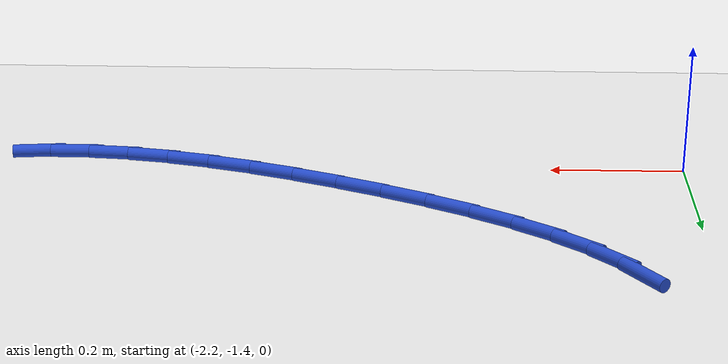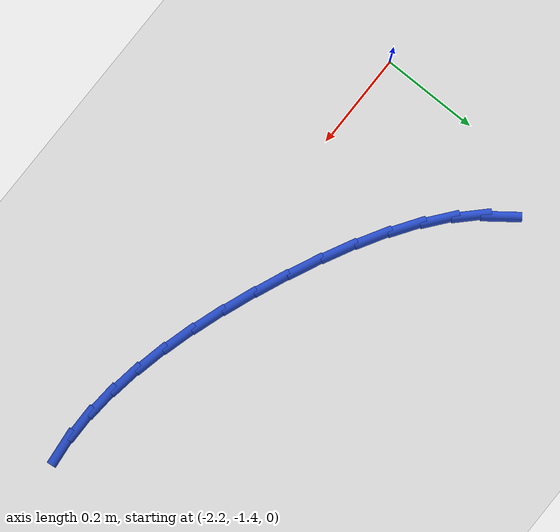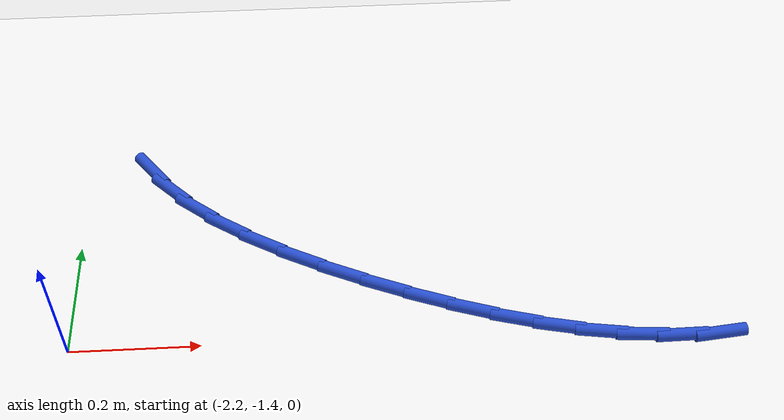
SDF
<sdf version="1.6">
 <world name="default">
  <model name="ground_plane">
   <static>1</static>
   <link name="link">
    <collision name="collision">
     <geometry><plane><normal>0 0 1</normal><size>100 100</size></plane></geometry>
     <surface><friction><ode><mu>100</mu><mu2>50</mu2></ode></friction></surface>
    </collision>
    <visual name="visual">
     <cast_shadows>0</cast_shadows>
     <geometry><plane><normal>0 0 1</normal><size>100 100</size></plane></geometry>
     <material>
      <script><uri>file://media/materials/scripts/gazebo.material</uri><name>Gazebo/WhiteGlow</name></script>
     </material>
    </visual>
   </link>
  </model>
  <model name="line">
   <link name="link_83">
    <pose>-2.097278951554167 -1.0423423361172428 0.01 0 1.57 -0.9215785528279761</pose>
    <collision name="collision">
     <geometry><cylinder><radius>0.01</radius><length>0.08</length></cylinder></geometry>
    </collision>
    <visual name="visual">
     <material>
      <script><name>Gazebo/Blue</name><uri>file://media/materials/scripts/gazebo.material</uri></script>
     </material>
     <geometry><cylinder><radius>0.01</radius><length>0.08</length></cylinder></geometry>
    </visual>
   </link>
   <link name="link_84">
    <pose>-2.0623718240667746 -1.0883350478365565 0.01 0 1.57 -0.7798618003433414</pose>
    <collision name="collision">
     <geometry><cylinder><radius>0.01</radius><length>0.08</length></cylinder></geometry>
    </collision>
    <visual name="visual">
     <material>
      <script><name>Gazebo/Blue</name><uri>file://media/materials/scripts/gazebo.material</uri></script>
     </material>
     <geometry><cylinder><radius>0.01</radius><length>0.08</length></cylinder></geometry>
    </visual>
   </link>
   <link name="link_85">
    <pose>-2.018516028402201 -1.1317079090537085 0.01 0 1.57 -0.6711293107530136</pose>
    <collision name="collision">
     <geometry><cylinder><radius>0.01</radius><length>0.08</length></cylinder></geometry>
    </collision>
    <visual name="visual">
     <material>
      <script><name>Gazebo/Blue</name><uri>file://media/materials/scripts/gazebo.material</uri></script>
     </material>
     <geometry><cylinder><radius>0.01</radius><length>0.08</length></cylinder></geometry>
    </visual>
   </link>
   <link name="link_86">
    <pose>-1.967212601340847 -1.1724476507670187 0.01 0 1.57 -0.5871153463928778</pose>
    <collision name="collision">
     <geometry><cylinder><radius>0.01</radius><length>0.08</length></cylinder></geometry>
    </collision>
    <visual name="visual">
     <material>
      <script><name>Gazebo/Blue</name><uri>file://media/materials/scripts/gazebo.material</uri></script>
     </material>
     <geometry><cylinder><radius>0.01</radius><length>0.08</length></cylinder></geometry>
    </visual>
   </link>
   <link name="link_87">
    <pose>-1.9099625796631146 -1.2105410039748057 0.01 0 1.57 -0.5213315073131324</pose>
    <collision name="collision">
     <geometry><cylinder><radius>0.01</radius><length>0.08</length></cylinder></geometry>
    </collision>
    <visual name="visual">
     <material>
      <script><name>Gazebo/Blue</name><uri>file://media/materials/scripts/gazebo.material</uri></script>
     </material>
     <geometry><cylinder><radius>0.01</radius><length>0.08</length></cylinder></geometry>
    </visual>
   </link>
   <link name="link_88">
    <pose>-1.8482670001494026 -1.2459746996753887 0.01 0 1.57 -0.4690871538194798</pose>
    <collision name="collision">
     <geometry><cylinder><radius>0.01</radius><length>0.08</length></cylinder></geometry>
    </collision>
    <visual name="visual">
     <material>
      <script><name>Gazebo/Blue</name><uri>file://media/materials/scripts/gazebo.material</uri></script>
     </material>
     <geometry><cylinder><radius>0.01</radius><length>0.08</length></cylinder></geometry>
    </visual>
   </link>
   <link name="link_89">
    <pose>-1.7836268995801121 -1.2787354688670878 0.01 0 1.57 -0.4270861615104132</pose>
    <collision name="collision">
     <geometry><cylinder><radius>0.01</radius><length>0.08</length></cylinder></geometry>
    </collision>
    <visual name="visual">
     <material>
      <script><name>Gazebo/Blue</name><uri>file://media/materials/scripts/gazebo.material</uri></script>
     </material>
     <geometry><cylinder><radius>0.01</radius><length>0.08</length></cylinder></geometry>
    </visual>
   </link>
   <link name="link_90">
    <pose>-1.7175433147356427 -1.3088100425482216 0.01 0 1.57 -0.3926466015424724</pose>
    <collision name="collision">
     <geometry><cylinder><radius>0.01</radius><length>0.08</length></cylinder></geometry>
    </collision>
    <visual name="visual">
     <material>
      <script><name>Gazebo/Blue</name><uri>file://media/materials/scripts/gazebo.material</uri></script>
     </material>
     <geometry><cylinder><radius>0.01</radius><length>0.08</length></cylinder></geometry>
    </visual>
   </link>
   <link name="link_91">
    <pose>-1.6514718022681085 -1.3361736968245648 0.01 0 1.57 -0.3580178452625368</pose>
    <collision name="collision">
     <geometry><cylinder><radius>0.01</radius><length>0.08</length></cylinder></geometry>
    </collision>
    <visual name="visual">
     <material>
      <script><name>Gazebo/Blue</name><uri>file://media/materials/scripts/gazebo.material</uri></script>
     </material>
     <geometry><cylinder><radius>0.01</radius><length>0.08</length></cylinder></geometry>
    </visual>
   </link>
   <link name="link_92">
    <pose>-1.5861378734760756 -1.360617834286271 0.01 0 1.57 -0.31729537720073947</pose>
    <collision name="collision">
     <geometry><cylinder><radius>0.01</radius><length>0.08</length></cylinder></geometry>
    </collision>
    <visual name="visual">
     <material>
      <script><name>Gazebo/Blue</name><uri>file://media/materials/scripts/gazebo.material</uri></script>
     </material>
     <geometry><cylinder><radius>0.01</radius><length>0.08</length></cylinder></geometry>
    </visual>
   </link>
   <link name="link_93">
    <pose>-1.521678589809133 -1.381785647084282 0.01 0 1.57 -0.2695051512375137</pose>
    <collision name="collision">
     <geometry><cylinder><radius>0.01</radius><length>0.08</length></cylinder></geometry>
    </collision>
    <visual name="visual">
     <material>
      <script><name>Gazebo/Blue</name><uri>file://media/materials/scripts/gazebo.material</uri></script>
     </material>
     <geometry><cylinder><radius>0.01</radius><length>0.08</length></cylinder></geometry>
    </visual>
   </link>
   <link name="link_94">
    <pose>-1.4582142650375394 -1.3993161092005417 0.01 0 1.57 -0.21372286657327128</pose>
    <collision name="collision">
     <geometry><cylinder><radius>0.01</radius><length>0.08</length></cylinder></geometry>
    </collision>
    <visual name="visual">
     <material>
      <script><name>Gazebo/Blue</name><uri>file://media/materials/scripts/gazebo.material</uri></script>
     </material>
     <geometry><cylinder><radius>0.01</radius><length>0.08</length></cylinder></geometry>
    </visual>
   </link>
   <link name="link_95">
    <pose>-1.3958652129315583 -1.4128481946169935 0.01 0 1.57 -0.1489805685940246</pose>
    <collision name="collision">
     <geometry><cylinder><radius>0.01</radius><length>0.08</length></cylinder></geometry>
    </collision>
    <visual name="visual">
     <material>
      <script><name>Gazebo/Blue</name><uri>file://media/materials/scripts/gazebo.material</uri></script>
     </material>
     <geometry><cylinder><radius>0.01</radius><length>0.08</length></cylinder></geometry>
    </visual>
   </link>
   <link name="link_96">
    <pose>-1.33475174726145 -1.4220208773155827 0.01 0 1.57 -0.07436787376497812</pose>
    <collision name="collision">
     <geometry><cylinder><radius>0.01</radius><length>0.08</length></cylinder></geometry>
    </collision>
    <visual name="visual">
     <material>
      <script><name>Gazebo/Blue</name><uri>file://media/materials/scripts/gazebo.material</uri></script>
     </material>
     <geometry><cylinder><radius>0.01</radius><length>0.08</length></cylinder></geometry>
    </visual>
   </link>
   <link name="link_97">
    <pose>-1.2749941817974753 -1.4264731312782524 0.01 0 1.57 0.010795500312016057</pose>
    <collision name="collision">
     <geometry><cylinder><radius>0.01</radius><length>0.08</length></cylinder></geometry>
    </collision>
    <visual name="visual">
     <material>
      <script><name>Gazebo/Blue</name><uri>file://media/materials/scripts/gazebo.material</uri></script>
     </material>
     <geometry><cylinder><radius>0.01</radius><length>0.08</length></cylinder></geometry>
    </visual>
   </link>
   <link name="link_98">
    <pose>-1.2167128303098944 -1.4258439304869472 0.01 0 1.57 0.10670615493311303</pose>
    <collision name="collision">
     <geometry><cylinder><radius>0.01</radius><length>0.08</length></cylinder></geometry>
    </collision>
    <visual name="visual">
     <material>
      <script><name>Gazebo/Blue</name><uri>file://media/materials/scripts/gazebo.material</uri></script>
     </material>
     <geometry><cylinder><radius>0.01</radius><length>0.08</length></cylinder></geometry>
    </visual>
   </link>
  </model>
 </world>
</sdf>
